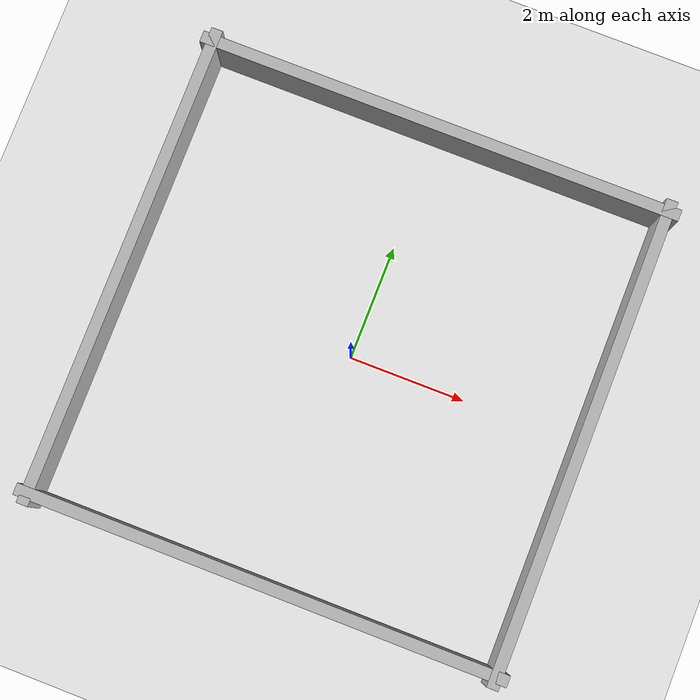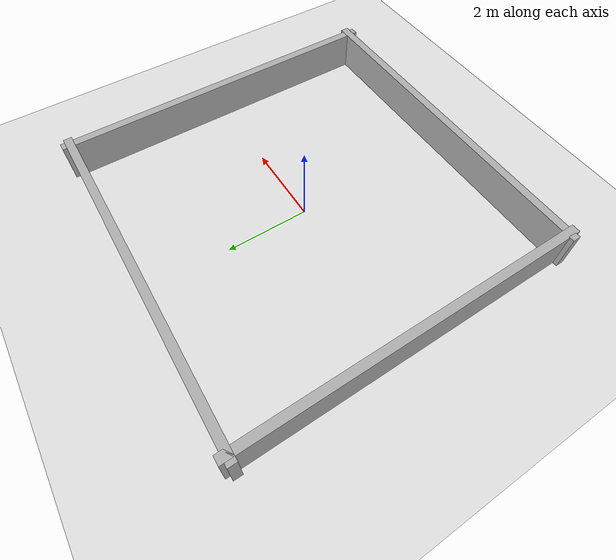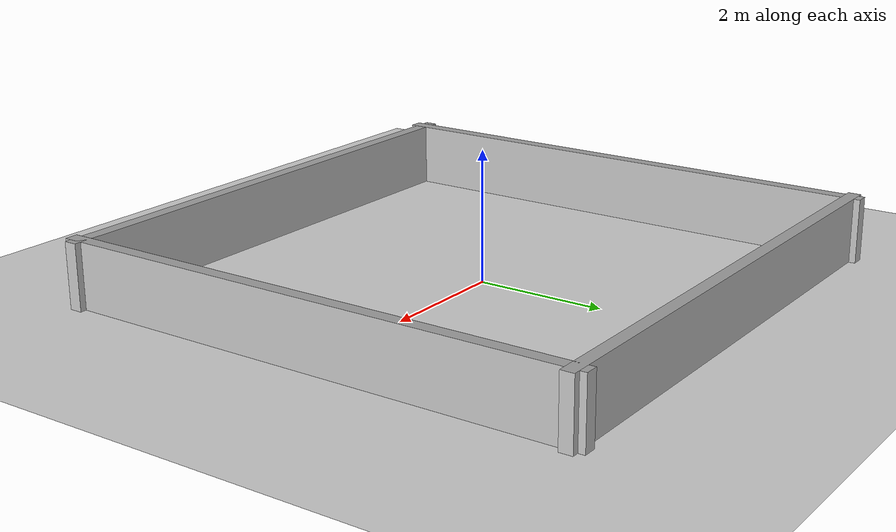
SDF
<?xml version="1.0" ?>
<sdf version="1.7">
  <world name="test_room">

    <!-- ── Lighting ─────────────────────────────────────────────────── -->
    <light type="directional" name="sun">
      <cast_shadows>true</cast_shadows>
      <pose>0 0 10 0 0 0</pose>
      <diffuse>0.8 0.8 0.8 1</diffuse>
      <specular>0.2 0.2 0.2 1</specular>
      <attenuation>
        <range>1000</range>
        <constant>0.9</constant>
        <linear>0.01</linear>
        <quadratic>0.001</quadratic>
      </attenuation>
      <direction>-0.5 0.1 -0.9</direction>
    </light>

    <!-- ── Physics ──────────────────────────────────────────────────── -->
    <physics name="1ms" type="ignored">
      <max_step_size>0.001</max_step_size>
      <real_time_factor>1.0</real_time_factor>
    </physics>
    <plugin filename="ignition-gazebo-physics-system"
            name="ignition::gazebo::systems::Physics"/>
    <plugin filename="ignition-gazebo-user-commands-system"
            name="ignition::gazebo::systems::UserCommands"/>
    <plugin filename="ignition-gazebo-scene-broadcaster-system"
            name="ignition::gazebo::systems::SceneBroadcaster"/>

    <!-- ── Ground Plane ─────────────────────────────────────────────── -->
    <model name="ground_plane">
      <static>true</static>
      <link name="link">
        <collision name="collision">
          <geometry>
            <plane>
              <normal>0 0 1</normal>
              <size>20 20</size>
            </plane>
          </geometry>
        </collision>
        <visual name="visual">
          <geometry>
            <plane>
              <normal>0 0 1</normal>
              <size>20 20</size>
            </plane>
          </geometry>
          <material>
            <ambient>0.9 0.9 0.9 1</ambient>
            <diffuse>0.9 0.9 0.9 1</diffuse>
          </material>
        </visual>
      </link>
    </model>

    <!--
      ── ผนัง 4 ด้าน — ห้อง 8×8 m (center = 0,0)
         หุ่นยนต์เริ่มที่ (0,0) วิ่ง 2×2 มีพื้นที่เหลือรอบด้าน 3 m
         ผนังหนา 0.2 m สูง 1.0 m (LiDAR ที่ความสูง ~0.3 m scan ได้)
    -->

    <!-- ด้านใต้  y = -4.0 -->
    <model name="wall_south">
      <static>true</static>
      <pose>0 -4.0 0.5 0 0 0</pose>
      <link name="link">
        <collision name="collision">
          <geometry><box><size>8.4 0.2 1.0</size></box></geometry>
        </collision>
        <visual name="visual">
          <geometry><box><size>8.4 0.2 1.0</size></box></geometry>
          <material>
            <ambient>0.7 0.7 0.7 1</ambient>
            <diffuse>0.7 0.7 0.7 1</diffuse>
          </material>
        </visual>
      </link>
    </model>

    <!-- ด้านเหนือ  y = +4.0 -->
    <model name="wall_north">
      <static>true</static>
      <pose>0 4.0 0.5 0 0 0</pose>
      <link name="link">
        <collision name="collision">
          <geometry><box><size>8.4 0.2 1.0</size></box></geometry>
        </collision>
        <visual name="visual">
          <geometry><box><size>8.4 0.2 1.0</size></box></geometry>
          <material>
            <ambient>0.7 0.7 0.7 1</ambient>
            <diffuse>0.7 0.7 0.7 1</diffuse>
          </material>
        </visual>
      </link>
    </model>

    <!-- ด้านตะวันตก  x = -4.0 -->
    <model name="wall_west">
      <static>true</static>
      <pose>-4.0 0 0.5 0 0 1.5708</pose>
      <link name="link">
        <collision name="collision">
          <geometry><box><size>8.4 0.2 1.0</size></box></geometry>
        </collision>
        <visual name="visual">
          <geometry><box><size>8.4 0.2 1.0</size></box></geometry>
          <material>
            <ambient>0.7 0.7 0.7 1</ambient>
            <diffuse>0.7 0.7 0.7 1</diffuse>
          </material>
        </visual>
      </link>
    </model>

    <!-- ด้านตะวันออก  x = +4.0 -->
    <model name="wall_east">
      <static>true</static>
      <pose>4.0 0 0.5 0 0 1.5708</pose>
      <link name="link">
        <collision name="collision">
          <geometry><box><size>8.4 0.2 1.0</size></box></geometry>
        </collision>
        <visual name="visual">
          <geometry><box><size>8.4 0.2 1.0</size></box></geometry>
          <material>
            <ambient>0.7 0.7 0.7 1</ambient>
            <diffuse>0.7 0.7 0.7 1</diffuse>
          </material>
        </visual>
      </link>
    </model>

  </world>
</sdf>
